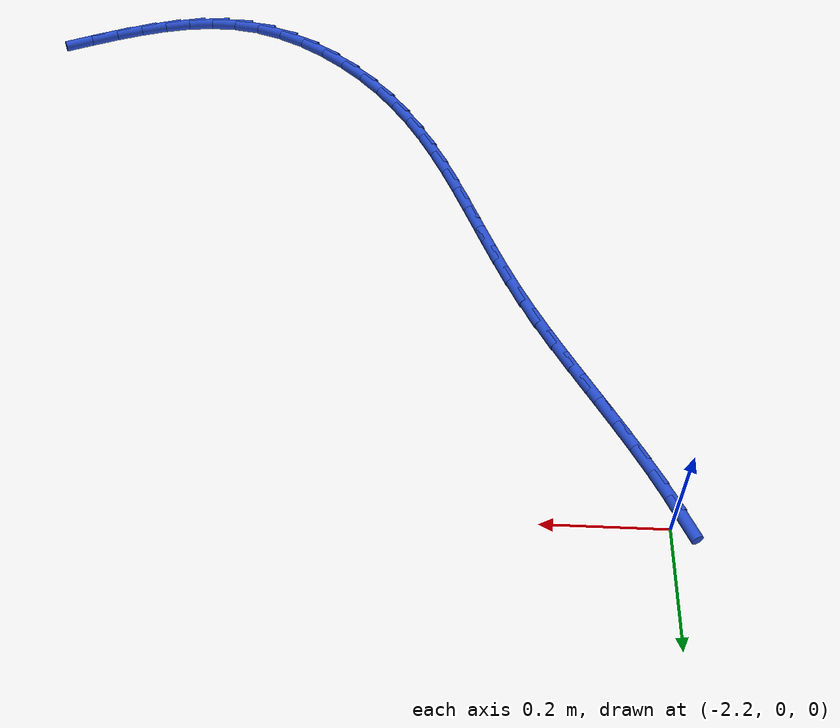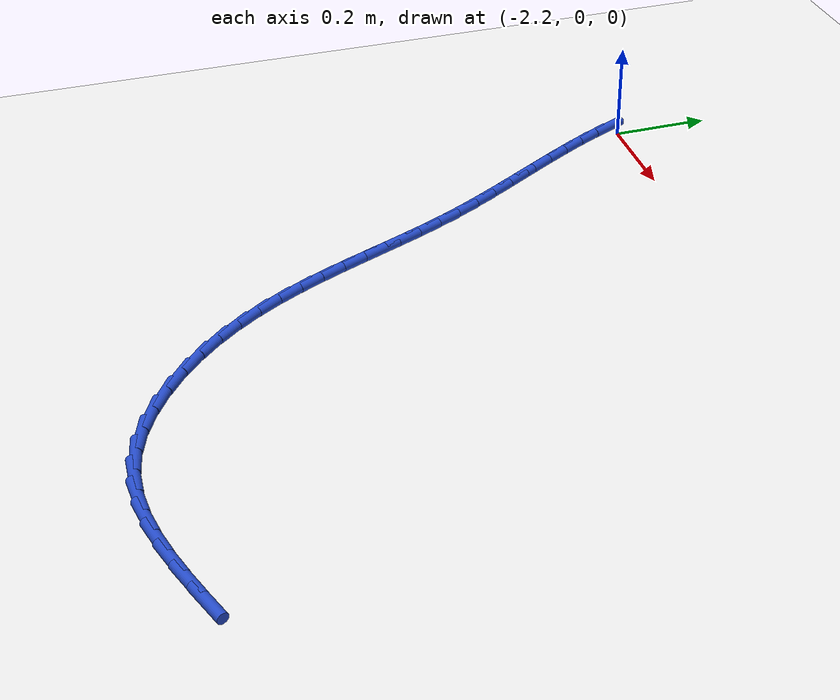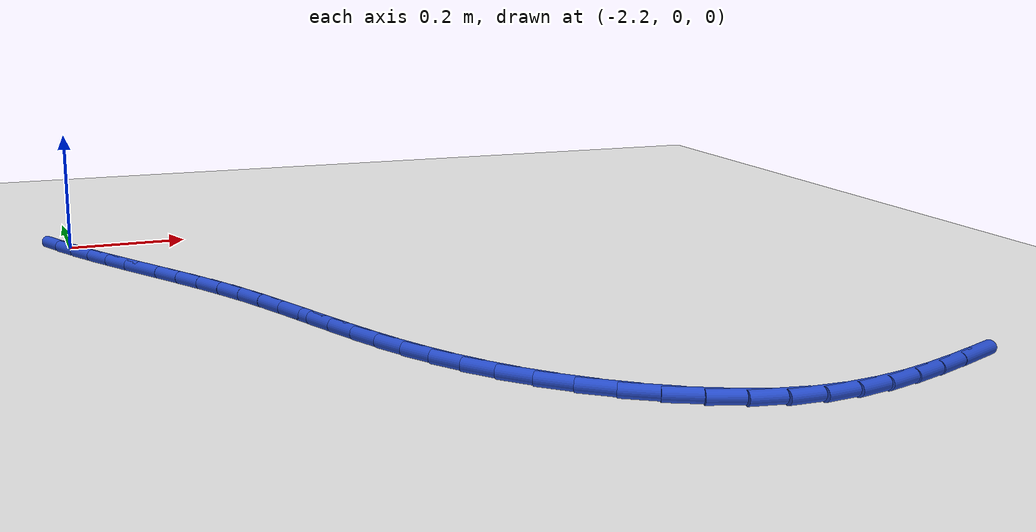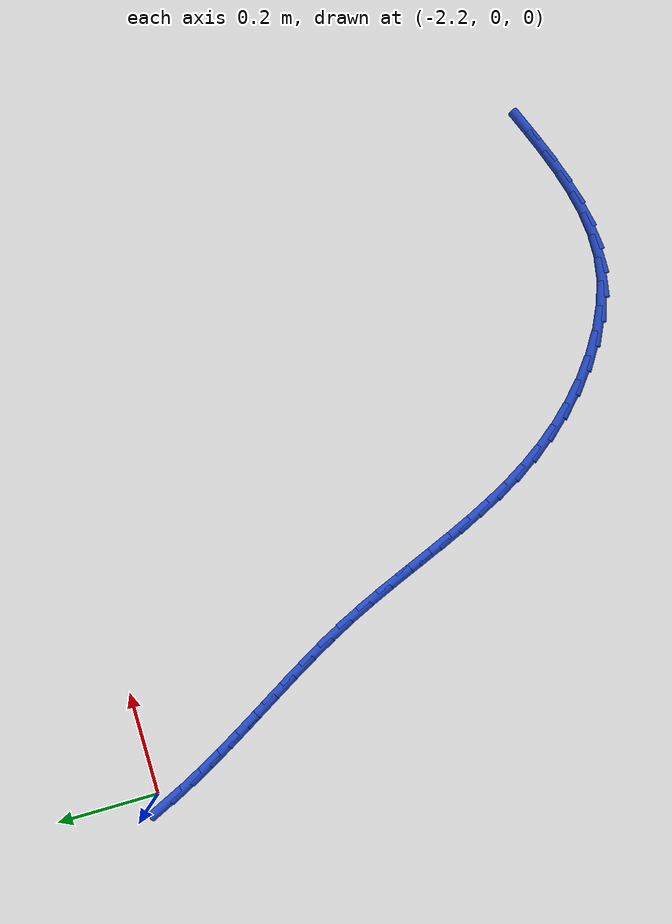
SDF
<sdf version="1.6">
 <world name="default">
  <model name="ground_plane">
   <static>1</static>
   <link name="link">
    <collision name="collision">
     <geometry><plane><normal>0 0 1</normal><size>100 100</size></plane></geometry>
     <surface><friction><ode><mu>100</mu><mu2>50</mu2></ode></friction></surface>
    </collision>
    <visual name="visual">
     <cast_shadows>0</cast_shadows>
     <geometry><plane><normal>0 0 1</normal><size>100 100</size></plane></geometry>
     <material>
      <script><uri>file://media/materials/scripts/gazebo.material</uri><name>Gazebo/WhiteGlow</name></script>
     </material>
    </visual>
   </link>
  </model>
  <model name="line">
   <link name="link_72">
    <pose>-2.220435874694441 -0.014056675081356574 0.01 0 1.57 -1.1350681250014132</pose>
    <collision name="collision">
     <geometry><cylinder><radius>0.01</radius><length>0.08</length></cylinder></geometry>
    </collision>
    <visual name="visual">
     <material>
      <script><name>Gazebo/Blue</name><uri>file://media/materials/scripts/gazebo.material</uri></script>
     </material>
     <geometry><cylinder><radius>0.01</radius><length>0.08</length></cylinder></geometry>
    </visual>
   </link>
   <link name="link_73">
    <pose>-2.1993518633306994 -0.059342889685839964 0.01 0 1.57 -1.0968137701040288</pose>
    <collision name="collision">
     <geometry><cylinder><radius>0.01</radius><length>0.08</length></cylinder></geometry>
    </collision>
    <visual name="visual">
     <material>
      <script><name>Gazebo/Blue</name><uri>file://media/materials/scripts/gazebo.material</uri></script>
     </material>
     <geometry><cylinder><radius>0.01</radius><length>0.08</length></cylinder></geometry>
    </visual>
   </link>
   <link name="link_74">
    <pose>-2.1763369214008588 -0.10420752648819559 0.01 0 1.57 -1.0679133220263883</pose>
    <collision name="collision">
     <geometry><cylinder><radius>0.01</radius><length>0.08</length></cylinder></geometry>
    </collision>
    <visual name="visual">
     <material>
      <script><name>Gazebo/Blue</name><uri>file://media/materials/scripts/gazebo.material</uri></script>
     </material>
     <geometry><cylinder><radius>0.01</radius><length>0.08</length></cylinder></geometry>
    </visual>
   </link>
   <link name="link_75">
    <pose>-2.1518298170576142 -0.14876169918656296 0.01 0 1.57 -1.0480056752352673</pose>
    <collision name="collision">
     <geometry><cylinder><radius>0.01</radius><length>0.08</length></cylinder></geometry>
    </collision>
    <visual name="visual">
     <material>
      <script><name>Gazebo/Blue</name><uri>file://media/materials/scripts/gazebo.material</uri></script>
     </material>
     <geometry><cylinder><radius>0.01</radius><length>0.08</length></cylinder></geometry>
    </visual>
   </link>
   <link name="link_76">
    <pose>-2.1262693184536645 -0.1931165214790809 0.01 0 1.57 -1.0367935465985996</pose>
    <collision name="collision">
     <geometry><cylinder><radius>0.01</radius><length>0.08</length></cylinder></geometry>
    </collision>
    <visual name="visual">
     <material>
      <script><name>Gazebo/Blue</name><uri>file://media/materials/scripts/gazebo.material</uri></script>
     </material>
     <geometry><cylinder><radius>0.01</radius><length>0.08</length></cylinder></geometry>
    </visual>
   </link>
   <link name="link_77">
    <pose>-2.100094193741704 -0.23738310706388818 0.01 0 1.57 -1.0340822119709623</pose>
    <collision name="collision">
     <geometry><cylinder><radius>0.01</radius><length>0.08</length></cylinder></geometry>
    </collision>
    <visual name="visual">
     <material>
      <script><name>Gazebo/Blue</name><uri>file://media/materials/scripts/gazebo.material</uri></script>
     </material>
     <geometry><cylinder><radius>0.01</radius><length>0.08</length></cylinder></geometry>
    </visual>
   </link>
   <link name="link_78">
    <pose>-2.073743211074429 -0.28167256963912435 0.01 0 1.57 -1.0397978922952544</pose>
    <collision name="collision">
     <geometry><cylinder><radius>0.01</radius><length>0.08</length></cylinder></geometry>
    </collision>
    <visual name="visual">
     <material>
      <script><name>Gazebo/Blue</name><uri>file://media/materials/scripts/gazebo.material</uri></script>
     </material>
     <geometry><cylinder><radius>0.01</radius><length>0.08</length></cylinder></geometry>
    </visual>
   </link>
   <link name="link_79">
    <pose>-2.047655138604537 -0.3260960229029267 0.01 0 1.57 -1.0539906528156404</pose>
    <collision name="collision">
     <geometry><cylinder><radius>0.01</radius><length>0.08</length></cylinder></geometry>
    </collision>
    <visual name="visual">
     <material>
      <script><name>Gazebo/Blue</name><uri>file://media/materials/scripts/gazebo.material</uri></script>
     </material>
     <geometry><cylinder><radius>0.01</radius><length>0.08</length></cylinder></geometry>
    </visual>
   </link>
   <link name="link_80">
    <pose>-2.022268744484724 -0.3707645805534351 0.01 0 1.57 -1.0768233188146168</pose>
    <collision name="collision">
     <geometry><cylinder><radius>0.01</radius><length>0.08</length></cylinder></geometry>
    </collision>
    <visual name="visual">
     <material>
      <script><name>Gazebo/Blue</name><uri>file://media/materials/scripts/gazebo.material</uri></script>
     </material>
     <geometry><cylinder><radius>0.01</radius><length>0.08</length></cylinder></geometry>
    </visual>
   </link>
   <link name="link_81">
    <pose>-1.9980227968676858 -0.4157893562887878 0.01 0 1.57 -1.1083896287668777</pose>
    <collision name="collision">
     <geometry><cylinder><radius>0.01</radius><length>0.08</length></cylinder></geometry>
    </collision>
    <visual name="visual">
     <material>
      <script><name>Gazebo/Blue</name><uri>file://media/materials/scripts/gazebo.material</uri></script>
     </material>
     <geometry><cylinder><radius>0.01</radius><length>0.08</length></cylinder></geometry>
    </visual>
   </link>
   <link name="link_82">
    <pose>-1.9753485107658948 -0.46127896243802124 0.01 0 1.57 -1.1413392504001236</pose>
    <collision name="collision">
     <geometry><cylinder><radius>0.01</radius><length>0.08</length></cylinder></geometry>
    </collision>
    <visual name="visual">
     <material>
      <script><name>Gazebo/Blue</name><uri>file://media/materials/scripts/gazebo.material</uri></script>
     </material>
     <geometry><cylinder><radius>0.01</radius><length>0.08</length></cylinder></geometry>
    </visual>
   </link>
   <link name="link_83">
    <pose>-1.9543091016571397 -0.5072201411359454 0.01 0 1.57 -1.164712441393673</pose>
    <collision name="collision">
     <geometry><cylinder><radius>0.01</radius><length>0.08</length></cylinder></geometry>
    </collision>
    <visual name="visual">
     <material>
      <script><name>Gazebo/Blue</name><uri>file://media/materials/scripts/gazebo.material</uri></script>
     </material>
     <geometry><cylinder><radius>0.01</radius><length>0.08</length></cylinder></geometry>
    </visual>
   </link>
   <link name="link_84">
    <pose>-1.9344416224906709 -0.5534253855754506 0.01 0 1.57 -1.177471022953458</pose>
    <collision name="collision">
     <geometry><cylinder><radius>0.01</radius><length>0.08</length></cylinder></geometry>
    </collision>
    <visual name="visual">
     <material>
      <script><name>Gazebo/Blue</name><uri>file://media/materials/scripts/gazebo.material</uri></script>
     </material>
     <geometry><cylinder><radius>0.01</radius><length>0.08</length></cylinder></geometry>
    </visual>
   </link>
   <link name="link_85">
    <pose>-1.9152426674523537 -0.5996937902440288 0.01 0 1.57 -1.1794692409208791</pose>
    <collision name="collision">
     <geometry><cylinder><radius>0.01</radius><length>0.08</length></cylinder></geometry>
    </collision>
    <visual name="visual">
     <material>
      <script><name>Gazebo/Blue</name><uri>file://media/materials/scripts/gazebo.material</uri></script>
     </material>
     <geometry><cylinder><radius>0.01</radius><length>0.08</length></cylinder></geometry>
    </visual>
   </link>
   <link name="link_86">
    <pose>-1.8962088307280514 -0.6458244496291708 0.01 0 1.57 -1.1705819325126863</pose>
    <collision name="collision">
     <geometry><cylinder><radius>0.01</radius><length>0.08</length></cylinder></geometry>
    </collision>
    <visual name="visual">
     <material>
      <script><name>Gazebo/Blue</name><uri>file://media/materials/scripts/gazebo.material</uri></script>
     </material>
     <geometry><cylinder><radius>0.01</radius><length>0.08</length></cylinder></geometry>
    </visual>
   </link>
   <link name="link_87">
    <pose>-1.876836706503629 -0.6916164582183696 0.01 0 1.57 -1.150698413052696</pose>
    <collision name="collision">
     <geometry><cylinder><radius>0.01</radius><length>0.08</length></cylinder></geometry>
    </collision>
    <visual name="visual">
     <material>
      <script><name>Gazebo/Blue</name><uri>file://media/materials/scripts/gazebo.material</uri></script>
     </material>
     <geometry><cylinder><radius>0.01</radius><length>0.08</length></cylinder></geometry>
    </visual>
   </link>
   <link name="link_88">
    <pose>-1.85662288896495 -0.7368689104991141 0.01 0 1.57 -1.1197553983769883</pose>
    <collision name="collision">
     <geometry><cylinder><radius>0.01</radius><length>0.08</length></cylinder></geometry>
    </collision>
    <visual name="visual">
     <material>
      <script><name>Gazebo/Blue</name><uri>file://media/materials/scripts/gazebo.material</uri></script>
     </material>
     <geometry><cylinder><radius>0.01</radius><length>0.08</length></cylinder></geometry>
    </visual>
   </link>
   <link name="link_89">
    <pose>-1.8350639722978788 -0.7813809009588969 0.01 0 1.57 -1.0778106053719143</pose>
    <collision name="collision">
     <geometry><cylinder><radius>0.01</radius><length>0.08</length></cylinder></geometry>
    </collision>
    <visual name="visual">
     <material>
      <script><name>Gazebo/Blue</name><uri>file://media/materials/scripts/gazebo.material</uri></script>
     </material>
     <geometry><cylinder><radius>0.01</radius><length>0.08</length></cylinder></geometry>
    </visual>
   </link>
   <link name="link_90">
    <pose>-1.8116565506882796 -0.8249515240852093 0.01 0 1.57 -1.0251539719905756</pose>
    <collision name="collision">
     <geometry><cylinder><radius>0.01</radius><length>0.08</length></cylinder></geometry>
    </collision>
    <visual name="visual">
     <material>
      <script><name>Gazebo/Blue</name><uri>file://media/materials/scripts/gazebo.material</uri></script>
     </material>
     <geometry><cylinder><radius>0.01</radius><length>0.08</length></cylinder></geometry>
    </visual>
   </link>
   <link name="link_91">
    <pose>-1.7858972183220163 -0.8673798743655434 0.01 0 1.57 -0.9624424498701533</pose>
    <collision name="collision">
     <geometry><cylinder><radius>0.01</radius><length>0.08</length></cylinder></geometry>
    </collision>
    <visual name="visual">
     <material>
      <script><name>Gazebo/Blue</name><uri>file://media/materials/scripts/gazebo.material</uri></script>
     </material>
     <geometry><cylinder><radius>0.01</radius><length>0.08</length></cylinder></geometry>
    </visual>
   </link>
   <link name="link_92">
    <pose>-1.7572825693849543 -0.9084650462873894 0.01 0 1.57 -0.8908309867041834</pose>
    <collision name="collision">
     <geometry><cylinder><radius>0.01</radius><length>0.08</length></cylinder></geometry>
    </collision>
    <visual name="visual">
     <material>
      <script><name>Gazebo/Blue</name><uri>file://media/materials/scripts/gazebo.material</uri></script>
     </material>
     <geometry><cylinder><radius>0.01</radius><length>0.08</length></cylinder></geometry>
    </visual>
   </link>
   <link name="link_93">
    <pose>-1.7253098479051738 -0.9480056860078425 0.01 0 1.57 -0.8133087376998186</pose>
    <collision name="collision">
     <geometry><cylinder><radius>0.01</radius><length>0.08</length></cylinder></geometry>
    </collision>
    <visual name="visual">
     <material>
      <script><name>Gazebo/Blue</name><uri>file://media/materials/scripts/gazebo.material</uri></script>
     </material>
     <geometry><cylinder><radius>0.01</radius><length>0.08</length></cylinder></geometry>
    </visual>
   </link>
   <link name="link_94">
    <pose>-1.6897403498084236 -0.9856182685525272 0.01 0 1.57 -0.7324856618081411</pose>
    <collision name="collision">
     <geometry><cylinder><radius>0.01</radius><length>0.08</length></cylinder></geometry>
    </collision>
    <visual name="visual">
     <material>
      <script><name>Gazebo/Blue</name><uri>file://media/materials/scripts/gazebo.material</uri></script>
     </material>
     <geometry><cylinder><radius>0.01</radius><length>0.08</length></cylinder></geometry>
    </visual>
   </link>
   <link name="link_95">
    <pose>-1.651003593447475 -1.020458257923558 0.01 0 1.57 -0.6454049616983315</pose>
    <collision name="collision">
     <geometry><cylinder><radius>0.01</radius><length>0.08</length></cylinder></geometry>
    </collision>
    <visual name="visual">
     <material>
      <script><name>Gazebo/Blue</name><uri>file://media/materials/scripts/gazebo.material</uri></script>
     </material>
     <geometry><cylinder><radius>0.01</radius><length>0.08</length></cylinder></geometry>
    </visual>
   </link>
   <link name="link_96">
    <pose>-1.609633194374465 -1.0516093007842628 0.01 0 1.57 -0.5482224375034975</pose>
    <collision name="collision">
     <geometry><cylinder><radius>0.01</radius><length>0.08</length></cylinder></geometry>
    </collision>
    <visual name="visual">
     <material>
      <script><name>Gazebo/Blue</name><uri>file://media/materials/scripts/gazebo.material</uri></script>
     </material>
     <geometry><cylinder><radius>0.01</radius><length>0.08</length></cylinder></geometry>
    </visual>
   </link>
   <link name="link_97">
    <pose>-1.566162768141528 -1.0781550437979714 0.01 0 1.57 -0.4367529406557609</pose>
    <collision name="collision">
     <geometry><cylinder><radius>0.01</radius><length>0.08</length></cylinder></geometry>
    </collision>
    <visual name="visual">
     <material>
      <script><name>Gazebo/Blue</name><uri>file://media/materials/scripts/gazebo.material</uri></script>
     </material>
     <geometry><cylinder><radius>0.01</radius><length>0.08</length></cylinder></geometry>
    </visual>
   </link>
   <link name="link_98">
    <pose>-1.5211259303008013 -1.0991791336280134 0.01 0 1.57 -0.3066243532223464</pose>
    <collision name="collision">
     <geometry><cylinder><radius>0.01</radius><length>0.08</length></cylinder></geometry>
    </collision>
    <visual name="visual">
     <material>
      <script><name>Gazebo/Blue</name><uri>file://media/materials/scripts/gazebo.material</uri></script>
     </material>
     <geometry><cylinder><radius>0.01</radius><length>0.08</length></cylinder></geometry>
    </visual>
   </link>
   <link name="link_99">
    <pose>-1.47505629640442 -1.1137652169377181 0.01 0 1.57 -0.15654627433954182</pose>
    <collision name="collision">
     <geometry><cylinder><radius>0.01</radius><length>0.08</length></cylinder></geometry>
    </collision>
    <visual name="visual">
     <material>
      <script><name>Gazebo/Blue</name><uri>file://media/materials/scripts/gazebo.material</uri></script>
     </material>
     <geometry><cylinder><radius>0.01</radius><length>0.08</length></cylinder></geometry>
    </visual>
   </link>
   <link name="link_100">
    <pose>-1.4284531072844482 -1.1211209593806086 0.01 0 1.57 -0.010254827862933732</pose>
    <collision name="collision">
     <geometry><cylinder><radius>0.01</radius><length>0.08</length></cylinder></geometry>
    </collision>
    <visual name="visual">
     <material>
      <script><name>Gazebo/Blue</name><uri>file://media/materials/scripts/gazebo.material</uri></script>
     </material>
     <geometry><cylinder><radius>0.01</radius><length>0.08</length></cylinder></geometry>
    </visual>
   </link>
   <link name="link_101">
    <pose>-1.381497277858587 -1.1216025002085015 0.01 0 1.57 0.11397709087639067</pose>
    <collision name="collision">
     <geometry><cylinder><radius>0.01</radius><length>0.08</length></cylinder></geometry>
    </collision>
    <visual name="visual">
     <material>
      <script><name>Gazebo/Blue</name><uri>file://media/materials/scripts/gazebo.material</uri></script>
     </material>
     <geometry><cylinder><radius>0.01</radius><length>0.08</length></cylinder></geometry>
    </visual>
   </link>
   <link name="link_102">
    <pose>-1.3341973366635342 -1.1161879236621464 0.01 0 1.57 0.21347058458890916</pose>
    <collision name="collision">
     <geometry><cylinder><radius>0.01</radius><length>0.08</length></cylinder></geometry>
    </collision>
    <visual name="visual">
     <material>
      <script><name>Gazebo/Blue</name><uri>file://media/materials/scripts/gazebo.material</uri></script>
     </material>
     <geometry><cylinder><radius>0.01</radius><length>0.08</length></cylinder></geometry>
    </visual>
   </link>
   <link name="link_103">
    <pose>-1.286560113972133 -1.1058614410712735 0.01 0 1.57 0.28885123688866626</pose>
    <collision name="collision">
     <geometry><cylinder><radius>0.01</radius><length>0.08</length></cylinder></geometry>
    </collision>
    <visual name="visual">
     <material>
      <script><name>Gazebo/Blue</name><uri>file://media/materials/scripts/gazebo.material</uri></script>
     </material>
     <geometry><cylinder><radius>0.01</radius><length>0.08</length></cylinder></geometry>
    </visual>
   </link>
   <link name="link_104">
    <pose>-1.2385924400572257 -1.0916072637656111 0.01 0 1.57 0.34211952521323796</pose>
    <collision name="collision">
     <geometry><cylinder><radius>0.01</radius><length>0.08</length></cylinder></geometry>
    </collision>
    <visual name="visual">
     <material>
      <script><name>Gazebo/Blue</name><uri>file://media/materials/scripts/gazebo.material</uri></script>
     </material>
     <geometry><cylinder><radius>0.01</radius><length>0.08</length></cylinder></geometry>
    </visual>
   </link>
   <link name="link_105">
    <pose>-1.190301145191656 -1.0744096030748886 0.01 0 1.57 0.3754185037838772</pose>
    <collision name="collision">
     <geometry><cylinder><radius>0.01</radius><length>0.08</length></cylinder></geometry>
    </collision>
    <visual name="visual">
     <material>
      <script><name>Gazebo/Blue</name><uri>file://media/materials/scripts/gazebo.material</uri></script>
     </material>
     <geometry><cylinder><radius>0.01</radius><length>0.08</length></cylinder></geometry>
    </visual>
   </link>
   <link name="link_106">
    <pose>-1.1416930596482664 -1.0552526703288352 0.01 0 1.57 0.3904194582449706</pose>
    <collision name="collision">
     <geometry><cylinder><radius>0.01</radius><length>0.08</length></cylinder></geometry>
    </collision>
    <visual name="visual">
     <material>
      <script><name>Gazebo/Blue</name><uri>file://media/materials/scripts/gazebo.material</uri></script>
     </material>
     <geometry><cylinder><radius>0.01</radius><length>0.08</length></cylinder></geometry>
    </visual>
   </link>
  </model>
 </world>
</sdf>
